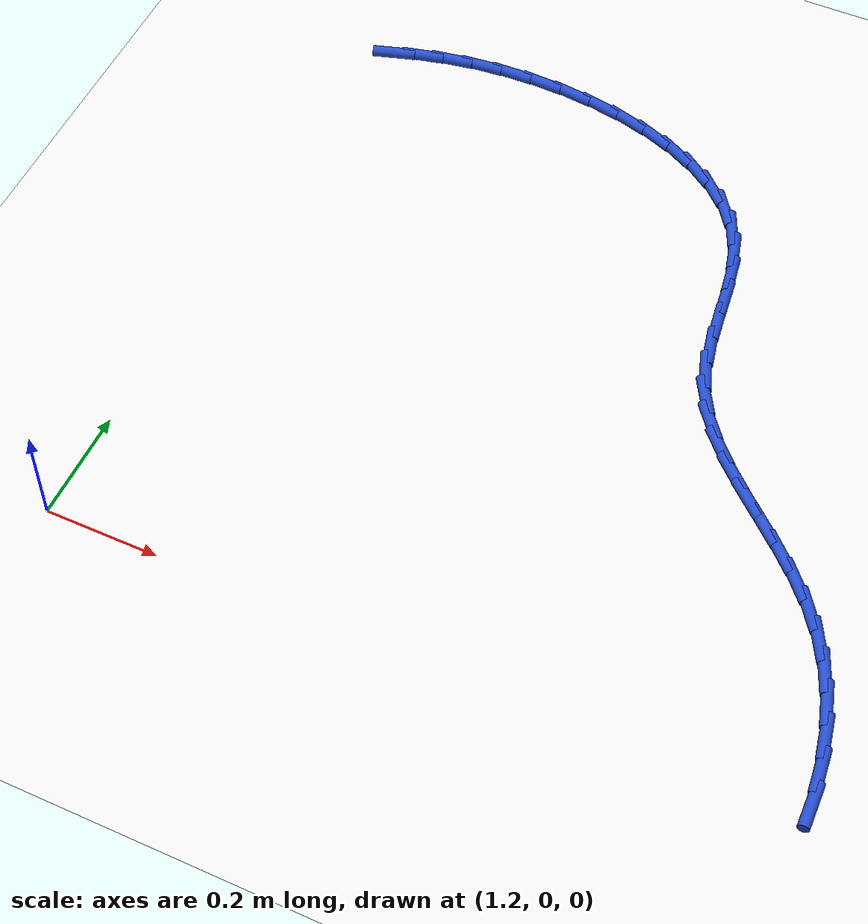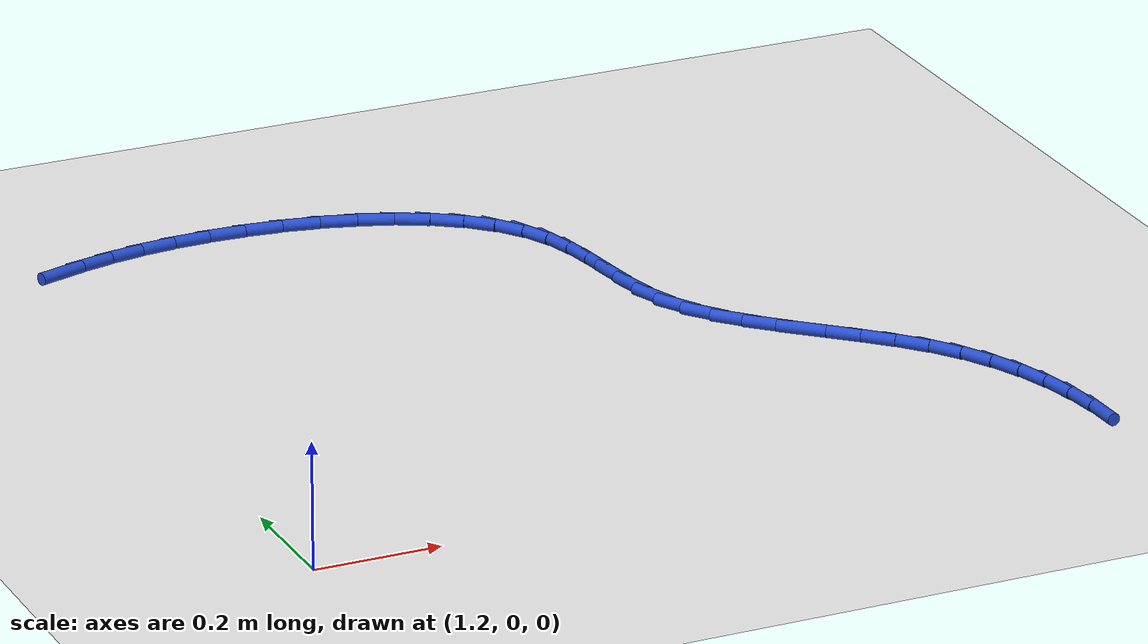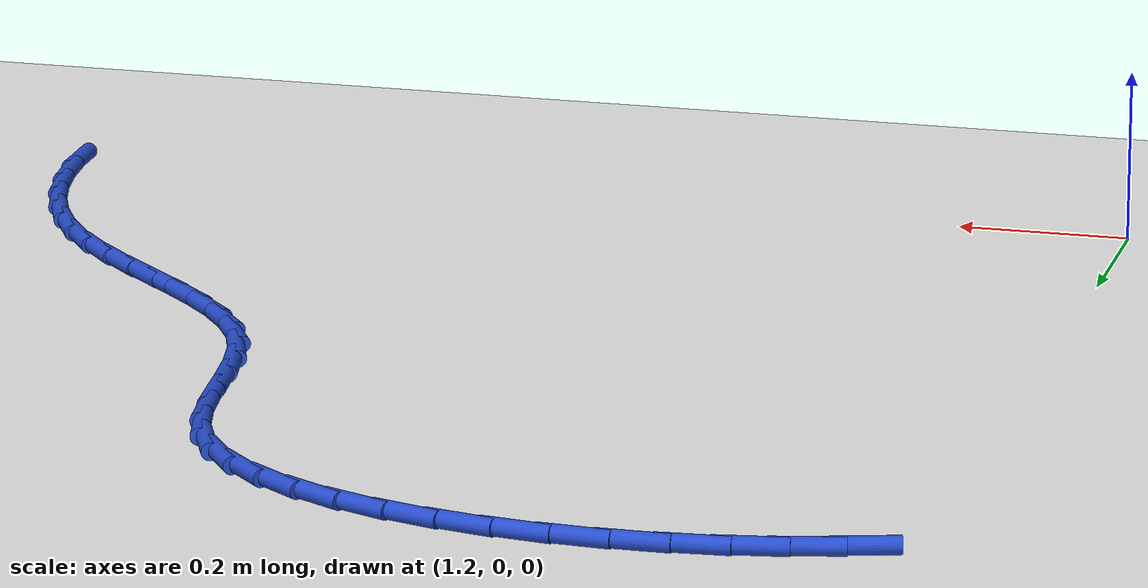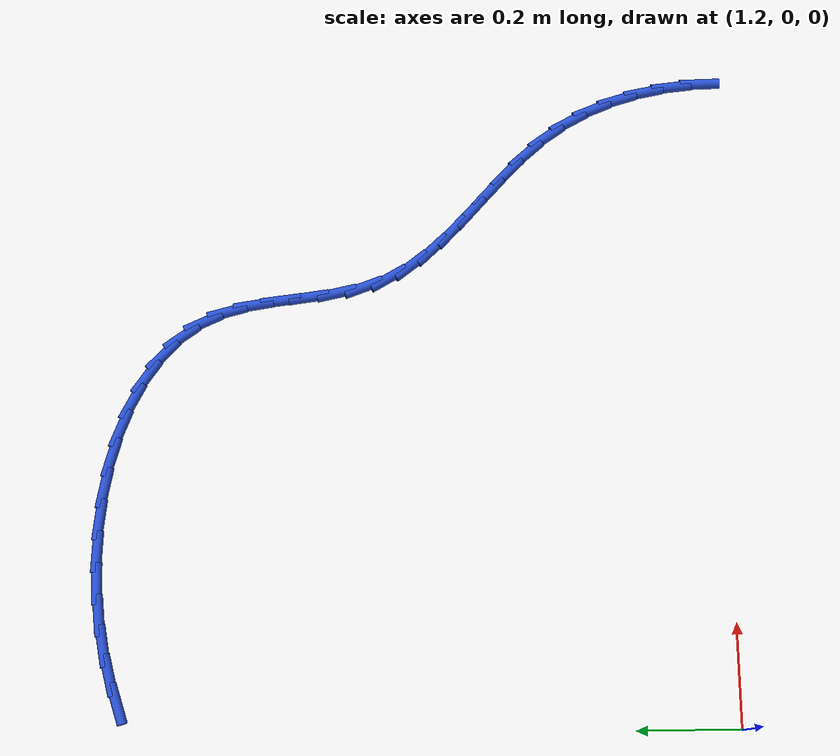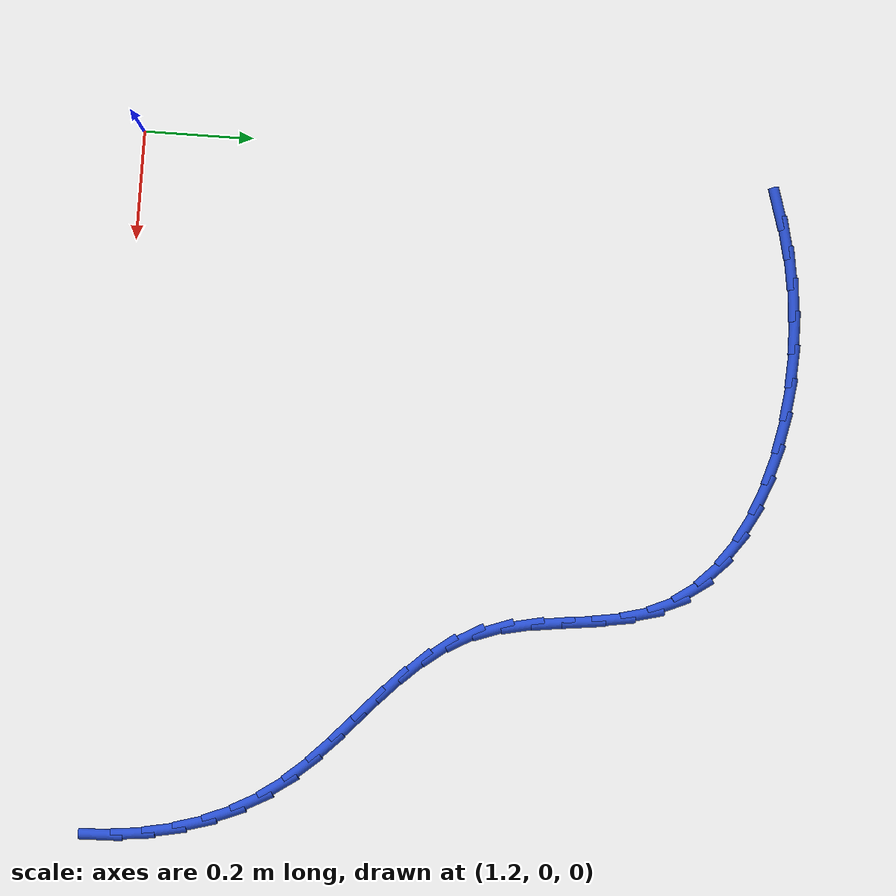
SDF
<sdf version="1.6">
 <world name="default">
  <model name="ground_plane">
   <static>1</static>
   <link name="link">
    <collision name="collision">
     <geometry><plane><normal>0 0 1</normal><size>100 100</size></plane></geometry>
     <surface><friction><ode><mu>100</mu><mu2>50</mu2></ode></friction></surface>
    </collision>
    <visual name="visual">
     <cast_shadows>0</cast_shadows>
     <geometry><plane><normal>0 0 1</normal><size>100 100</size></plane></geometry>
     <material>
      <script><uri>file://media/materials/scripts/gazebo.material</uri><name>Gazebo/WhiteGlow</name></script>
     </material>
    </visual>
   </link>
  </model>
  <model name="line">
   <link name="link_34">
    <pose>1.2628420017048514 1.1686308548160476 0.01 0 1.57 0.2969063025820413</pose>
    <collision name="collision">
     <geometry><cylinder><radius>0.01</radius><length>0.08</length></cylinder></geometry>
    </collision>
    <visual name="visual">
     <material>
      <script><name>Gazebo/Blue</name><uri>file://media/materials/scripts/gazebo.material</uri></script>
     </material>
     <geometry><cylinder><radius>0.01</radius><length>0.08</length></cylinder></geometry>
    </visual>
   </link>
   <link name="link_35">
    <pose>1.3154587845675563 1.184728946362557 0.01 0 1.57 0.23081038291306477</pose>
    <collision name="collision">
     <geometry><cylinder><radius>0.01</radius><length>0.08</length></cylinder></geometry>
    </collision>
    <visual name="visual">
     <material>
      <script><name>Gazebo/Blue</name><uri>file://media/materials/scripts/gazebo.material</uri></script>
     </material>
     <geometry><cylinder><radius>0.01</radius><length>0.08</length></cylinder></geometry>
    </visual>
   </link>
   <link name="link_36">
    <pose>1.3703428699247466 1.1976266150611272 0.01 0 1.57 0.1584560932622686</pose>
    <collision name="collision">
     <geometry><cylinder><radius>0.01</radius><length>0.08</length></cylinder></geometry>
    </collision>
    <visual name="visual">
     <material>
      <script><name>Gazebo/Blue</name><uri>file://media/materials/scripts/gazebo.material</uri></script>
     </material>
     <geometry><cylinder><radius>0.01</radius><length>0.08</length></cylinder></geometry>
    </visual>
   </link>
   <link name="link_37">
    <pose>1.4278493617497325 1.2068159074114269 0.01 0 1.57 0.08603720980987684</pose>
    <collision name="collision">
     <geometry><cylinder><radius>0.01</radius><length>0.08</length></cylinder></geometry>
    </collision>
    <visual name="visual">
     <material>
      <script><name>Gazebo/Blue</name><uri>file://media/materials/scripts/gazebo.material</uri></script>
     </material>
     <geometry><cylinder><radius>0.01</radius><length>0.08</length></cylinder></geometry>
    </visual>
   </link>
   <link name="link_38">
    <pose>1.4876901010338748 1.2119771792102536 0.01 0 1.57 0.016498323912422754</pose>
    <collision name="collision">
     <geometry><cylinder><radius>0.01</radius><length>0.08</length></cylinder></geometry>
    </collision>
    <visual name="visual">
     <material>
      <script><name>Gazebo/Blue</name><uri>file://media/materials/scripts/gazebo.material</uri></script>
     </material>
     <geometry><cylinder><radius>0.01</radius><length>0.08</length></cylinder></geometry>
    </visual>
   </link>
   <link name="link_39">
    <pose>1.5489058831649645 1.2129872286574337 0.01 0 1.57 -0.05279440181231193</pose>
    <collision name="collision">
     <geometry><cylinder><radius>0.01</radius><length>0.08</length></cylinder></geometry>
    </collision>
    <visual name="visual">
     <material>
      <script><name>Gazebo/Blue</name><uri>file://media/materials/scripts/gazebo.material</uri></script>
     </material>
     <geometry><cylinder><radius>0.01</radius><length>0.08</length></cylinder></geometry>
    </visual>
   </link>
   <link name="link_40">
    <pose>1.6105060577933654 1.2097320594020065 0.01 0 1.57 -0.12451875571283302</pose>
    <collision name="collision">
     <geometry><cylinder><radius>0.01</radius><length>0.08</length></cylinder></geometry>
    </collision>
    <visual name="visual">
     <material>
      <script><name>Gazebo/Blue</name><uri>file://media/materials/scripts/gazebo.material</uri></script>
     </material>
     <geometry><cylinder><radius>0.01</radius><length>0.08</length></cylinder></geometry>
    </visual>
   </link>
   <link name="link_41">
    <pose>1.6714999745694434 1.202097675093012 0.01 0 1.57 -0.20141015896901712</pose>
    <collision name="collision">
     <geometry><cylinder><radius>0.01</radius><length>0.08</length></cylinder></geometry>
    </collision>
    <visual name="visual">
     <material>
      <script><name>Gazebo/Blue</name><uri>file://media/materials/scripts/gazebo.material</uri></script>
     </material>
     <geometry><cylinder><radius>0.01</radius><length>0.08</length></cylinder></geometry>
    </visual>
   </link>
   <link name="link_42">
    <pose>1.7308969831435637 1.1899700793794903 0.01 0 1.57 -0.2864749162294685</pose>
    <collision name="collision">
     <geometry><cylinder><radius>0.01</radius><length>0.08</length></cylinder></geometry>
    </collision>
    <visual name="visual">
     <material>
      <script><name>Gazebo/Blue</name><uri>file://media/materials/scripts/gazebo.material</uri></script>
     </material>
     <geometry><cylinder><radius>0.01</radius><length>0.08</length></cylinder></geometry>
    </visual>
   </link>
   <link name="link_43">
    <pose>1.7877064331660917 1.1732352759104812 0.01 0 1.57 -0.3831515980471236</pose>
    <collision name="collision">
     <geometry><cylinder><radius>0.01</radius><length>0.08</length></cylinder></geometry>
    </collision>
    <visual name="visual">
     <material>
      <script><name>Gazebo/Blue</name><uri>file://media/materials/scripts/gazebo.material</uri></script>
     </material>
     <geometry><cylinder><radius>0.01</radius><length>0.08</length></cylinder></geometry>
    </visual>
   </link>
   <link name="link_44">
    <pose>1.8409376742873922 1.1517792683350245 0.01 0 1.57 -0.49534837484774535</pose>
    <collision name="collision">
     <geometry><cylinder><radius>0.01</radius><length>0.08</length></cylinder></geometry>
    </collision>
    <visual name="visual">
     <material>
      <script><name>Gazebo/Blue</name><uri>file://media/materials/scripts/gazebo.material</uri></script>
     </material>
     <geometry><cylinder><radius>0.01</radius><length>0.08</length></cylinder></geometry>
    </visual>
   </link>
   <link name="link_45">
    <pose>1.8896000561578299 1.1254880603021602 0.01 0 1.57 -0.6271686142967373</pose>
    <collision name="collision">
     <geometry><cylinder><radius>0.01</radius><length>0.08</length></cylinder></geometry>
    </collision>
    <visual name="visual">
     <material>
      <script><name>Gazebo/Blue</name><uri>file://media/materials/scripts/gazebo.material</uri></script>
     </material>
     <geometry><cylinder><radius>0.01</radius><length>0.08</length></cylinder></geometry>
    </visual>
   </link>
   <link name="link_46">
    <pose>1.9327029284277712 1.0942476554609284 0.01 0 1.57 -0.7819789215042338</pose>
    <collision name="collision">
     <geometry><cylinder><radius>0.01</radius><length>0.08</length></cylinder></geometry>
    </collision>
    <visual name="visual">
     <material>
      <script><name>Gazebo/Blue</name><uri>file://media/materials/scripts/gazebo.material</uri></script>
     </material>
     <geometry><cylinder><radius>0.01</radius><length>0.08</length></cylinder></geometry>
    </visual>
   </link>
   <link name="link_47">
    <pose>1.9692556407475803 1.057944057460369 0.01 0 1.57 -0.96046928759951</pose>
    <collision name="collision">
     <geometry><cylinder><radius>0.01</radius><length>0.08</length></cylinder></geometry>
    </collision>
    <visual name="visual">
     <material>
      <script><name>Gazebo/Blue</name><uri>file://media/materials/scripts/gazebo.material</uri></script>
     </material>
     <geometry><cylinder><radius>0.01</radius><length>0.08</length></cylinder></geometry>
    </visual>
   </link>
   <link name="link_48">
    <pose>1.9982675427676229 1.0164632699495213 0.01 0 1.57 -1.155850809281119</pose>
    <collision name="collision">
     <geometry><cylinder><radius>0.01</radius><length>0.08</length></cylinder></geometry>
    </collision>
    <visual name="visual">
     <material>
      <script><name>Gazebo/Blue</name><uri>file://media/materials/scripts/gazebo.material</uri></script>
     </material>
     <geometry><cylinder><radius>0.01</radius><length>0.08</length></cylinder></geometry>
    </visual>
   </link>
   <link name="link_49">
    <pose>2.0188510142915383 0.9697382625432132 0.01 0 1.57 -1.3183940002396877</pose>
    <collision name="collision">
     <geometry><cylinder><radius>0.01</radius><length>0.08</length></cylinder></geometry>
    </collision>
    <visual name="visual">
     <material>
      <script><name>Gazebo/Blue</name><uri>file://media/materials/scripts/gazebo.material</uri></script>
     </material>
     <geometry><cylinder><radius>0.01</radius><length>0.08</length></cylinder></geometry>
    </visual>
   </link>
   <link name="link_50">
    <pose>2.032044819382666 0.9185801409587488 0.01 0 1.57 -1.413750732601165</pose>
    <collision name="collision">
     <geometry><cylinder><radius>0.01</radius><length>0.08</length></cylinder></geometry>
    </collision>
    <visual name="visual">
     <material>
      <script><name>Gazebo/Blue</name><uri>file://media/materials/scripts/gazebo.material</uri></script>
     </material>
     <geometry><cylinder><radius>0.01</radius><length>0.08</length></cylinder></geometry>
    </visual>
   </link>
   <link name="link_51">
    <pose>2.040595924797375 0.8645786896466844 0.01 0 1.57 -1.4498110701978522</pose>
    <collision name="collision">
     <geometry><cylinder><radius>0.01</radius><length>0.08</length></cylinder></geometry>
    </collision>
    <visual name="visual">
     <material>
      <script><name>Gazebo/Blue</name><uri>file://media/materials/scripts/gazebo.material</uri></script>
     </material>
     <geometry><cylinder><radius>0.01</radius><length>0.08</length></cylinder></geometry>
    </visual>
   </link>
   <link name="link_52">
    <pose>2.0473104933910493 0.8093506774099489 0.01 0 1.57 -1.4315769445248943</pose>
    <collision name="collision">
     <geometry><cylinder><radius>0.01</radius><length>0.08</length></cylinder></geometry>
    </collision>
    <visual name="visual">
     <material>
      <script><name>Gazebo/Blue</name><uri>file://media/materials/scripts/gazebo.material</uri></script>
     </material>
     <geometry><cylinder><radius>0.01</radius><length>0.08</length></cylinder></geometry>
    </visual>
   </link>
   <link name="link_53">
    <pose>2.054994688019075 0.754512873051474 0.01 0 1.57 -1.3571871627185286</pose>
    <collision name="collision">
     <geometry><cylinder><radius>0.01</radius><length>0.08</length></cylinder></geometry>
    </collision>
    <visual name="visual">
     <material>
      <script><name>Gazebo/Blue</name><uri>file://media/materials/scripts/gazebo.material</uri></script>
     </material>
     <geometry><cylinder><radius>0.01</radius><length>0.08</length></cylinder></geometry>
    </visual>
   </link>
   <link name="link_54">
    <pose>2.0664546715368384 0.7016820453741899 0.01 0 1.57 -1.2200794172710414</pose>
    <collision name="collision">
     <geometry><cylinder><radius>0.01</radius><length>0.08</length></cylinder></geometry>
    </collision>
    <visual name="visual">
     <material>
      <script><name>Gazebo/Blue</name><uri>file://media/materials/scripts/gazebo.material</uri></script>
     </material>
     <geometry><cylinder><radius>0.01</radius><length>0.08</length></cylinder></geometry>
    </visual>
   </link>
   <link name="link_55">
    <pose>2.0844637119460048 0.6524556508415957 0.01 0 1.57 -1.0530897019441856</pose>
    <collision name="collision">
     <geometry><cylinder><radius>0.01</radius><length>0.08</length></cylinder></geometry>
    </collision>
    <visual name="visual">
     <material>
      <script><name>Gazebo/Blue</name><uri>file://media/materials/scripts/gazebo.material</uri></script>
     </material>
     <geometry><cylinder><radius>0.01</radius><length>0.08</length></cylinder></geometry>
    </visual>
   </link>
   <link name="link_56">
    <pose>2.110102505828461 0.6074374490293374 0.01 0 1.57 -0.9176567154819267</pose>
    <collision name="collision">
     <geometry><cylinder><radius>0.01</radius><length>0.08</length></cylinder></geometry>
    </collision>
    <visual name="visual">
     <material>
      <script><name>Gazebo/Blue</name><uri>file://media/materials/scripts/gazebo.material</uri></script>
     </material>
     <geometry><cylinder><radius>0.01</radius><length>0.08</length></cylinder></geometry>
    </visual>
   </link>
   <link name="link_57">
    <pose>2.141978280617027 0.5657790430091059 0.01 0 1.57 -0.821514991020112</pose>
    <collision name="collision">
     <geometry><cylinder><radius>0.01</radius><length>0.08</length></cylinder></geometry>
    </collision>
    <visual name="visual">
     <material>
      <script><name>Gazebo/Blue</name><uri>file://media/materials/scripts/gazebo.material</uri></script>
     </material>
     <geometry><cylinder><radius>0.01</radius><length>0.08</length></cylinder></geometry>
    </visual>
   </link>
   <link name="link_58">
    <pose>2.1785021085780705 0.5265168745210467 0.01 0 1.57 -0.7627511012854855</pose>
    <collision name="collision">
     <geometry><cylinder><radius>0.01</radius><length>0.08</length></cylinder></geometry>
    </collision>
    <visual name="visual">
     <material>
      <script><name>Gazebo/Blue</name><uri>file://media/materials/scripts/gazebo.material</uri></script>
     </material>
     <geometry><cylinder><radius>0.01</radius><length>0.08</length></cylinder></geometry>
    </visual>
   </link>
   <link name="link_59">
    <pose>2.218085061977962 0.4886873853053048 0.01 0 1.57 -0.7383392303276833</pose>
    <collision name="collision">
     <geometry><cylinder><radius>0.01</radius><length>0.08</length></cylinder></geometry>
    </collision>
    <visual name="visual">
     <material>
      <script><name>Gazebo/Blue</name><uri>file://media/materials/scripts/gazebo.material</uri></script>
     </material>
     <geometry><cylinder><radius>0.01</radius><length>0.08</length></cylinder></geometry>
    </visual>
   </link>
   <link name="link_60">
    <pose>2.2591382130830704 0.4513270171020263 0.01 0 1.57 -0.7463312899429972</pose>
    <collision name="collision">
     <geometry><cylinder><radius>0.01</radius><length>0.08</length></cylinder></geometry>
    </collision>
    <visual name="visual">
     <material>
      <script><name>Gazebo/Blue</name><uri>file://media/materials/scripts/gazebo.material</uri></script>
     </material>
     <geometry><cylinder><radius>0.01</radius><length>0.08</length></cylinder></geometry>
    </visual>
   </link>
   <link name="link_61">
    <pose>2.300072634159765 0.41347221165135584 0.01 0 1.57 -0.7864936317724981</pose>
    <collision name="collision">
     <geometry><cylinder><radius>0.01</radius><length>0.08</length></cylinder></geometry>
    </collision>
    <visual name="visual">
     <material>
      <script><name>Gazebo/Blue</name><uri>file://media/materials/scripts/gazebo.material</uri></script>
     </material>
     <geometry><cylinder><radius>0.01</radius><length>0.08</length></cylinder></geometry>
    </visual>
   </link>
   <link name="link_62">
    <pose>2.339299397474414 0.3741594106934395 0.01 0 1.57 -0.8599934390843179</pose>
    <collision name="collision">
     <geometry><cylinder><radius>0.01</radius><length>0.08</length></cylinder></geometry>
    </collision>
    <visual name="visual">
     <material>
      <script><name>Gazebo/Blue</name><uri>file://media/materials/scripts/gazebo.material</uri></script>
     </material>
     <geometry><cylinder><radius>0.01</radius><length>0.08</length></cylinder></geometry>
    </visual>
   </link>
   <link name="link_63">
    <pose>2.3752295752933867 0.332425055968422 0.01 0 1.57 -0.9661852743838006</pose>
    <collision name="collision">
     <geometry><cylinder><radius>0.01</radius><length>0.08</length></cylinder></geometry>
    </collision>
    <visual name="visual">
     <material>
      <script><name>Gazebo/Blue</name><uri>file://media/materials/scripts/gazebo.material</uri></script>
     </material>
     <geometry><cylinder><radius>0.01</radius><length>0.08</length></cylinder></geometry>
    </visual>
   </link>
   <link name="link_64">
    <pose>2.406357687441986 0.2873724100060042 0.01 0 1.57 -1.081364535669492</pose>
    <collision name="collision">
     <geometry><cylinder><radius>0.01</radius><length>0.08</length></cylinder></geometry>
    </collision>
    <visual name="visual">
     <material>
      <script><name>Gazebo/Blue</name><uri>file://media/materials/scripts/gazebo.material</uri></script>
     </material>
     <geometry><cylinder><radius>0.01</radius><length>0.08</length></cylinder></geometry>
    </visual>
   </link>
   <link name="link_65">
    <pose>2.4321752760070114 0.2389031027844836 0.01 0 1.57 -1.1890953010450411</pose>
    <collision name="collision">
     <geometry><cylinder><radius>0.01</radius><length>0.08</length></cylinder></geometry>
    </collision>
    <visual name="visual">
     <material>
      <script><name>Gazebo/Blue</name><uri>file://media/materials/scripts/gazebo.material</uri></script>
     </material>
     <geometry><cylinder><radius>0.01</radius><length>0.08</length></cylinder></geometry>
    </visual>
   </link>
   <link name="link_66">
    <pose>2.452830153030504 0.1874442736814856 0.01 0 1.57 -1.2887431031602288</pose>
    <collision name="collision">
     <geometry><cylinder><radius>0.01</radius><length>0.08</length></cylinder></geometry>
    </collision>
    <visual name="visual">
     <material>
      <script><name>Gazebo/Blue</name><uri>file://media/materials/scripts/gazebo.material</uri></script>
     </material>
     <geometry><cylinder><radius>0.01</radius><length>0.08</length></cylinder></geometry>
    </visual>
   </link>
   <link name="link_67">
    <pose>2.468481668968896 0.13343230148163282 0.01 0 1.57 -1.3805758074471217</pose>
    <collision name="collision">
     <geometry><cylinder><radius>0.01</radius><length>0.08</length></cylinder></geometry>
    </collision>
    <visual name="visual">
     <material>
      <script><name>Gazebo/Blue</name><uri>file://media/materials/scripts/gazebo.material</uri></script>
     </material>
     <geometry><cylinder><radius>0.01</radius><length>0.08</length></cylinder></geometry>
    </visual>
   </link>
   <link name="link_68">
    <pose>2.479289174278617 0.0773035649695458 0.01 0 1.57 -1.4652748705228138</pose>
    <collision name="collision">
     <geometry><cylinder><radius>0.01</radius><length>0.08</length></cylinder></geometry>
    </collision>
    <visual name="visual">
     <material>
      <script><name>Gazebo/Blue</name><uri>file://media/materials/scripts/gazebo.material</uri></script>
     </material>
     <geometry><cylinder><radius>0.01</radius><length>0.08</length></cylinder></geometry>
    </visual>
   </link>
   <link name="link_69">
    <pose>2.4854120194160982 0.019494442929847082 0.01 0 1.57 -1.543750412157234</pose>
    <collision name="collision">
     <geometry><cylinder><radius>0.01</radius><length>0.08</length></cylinder></geometry>
    </collision>
    <visual name="visual">
     <material>
      <script><name>Gazebo/Blue</name><uri>file://media/materials/scripts/gazebo.material</uri></script>
     </material>
     <geometry><cylinder><radius>0.01</radius><length>0.08</length></cylinder></geometry>
    </visual>
   </link>
  </model>
 </world>
</sdf>
